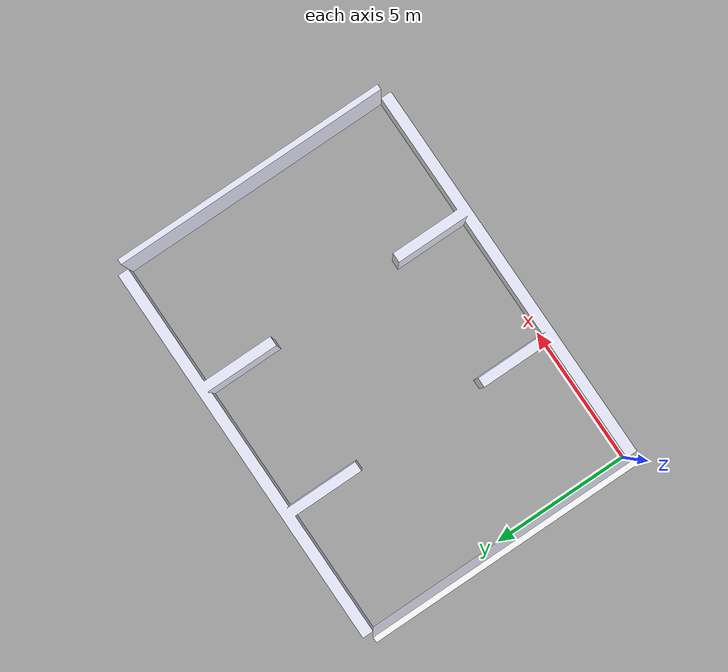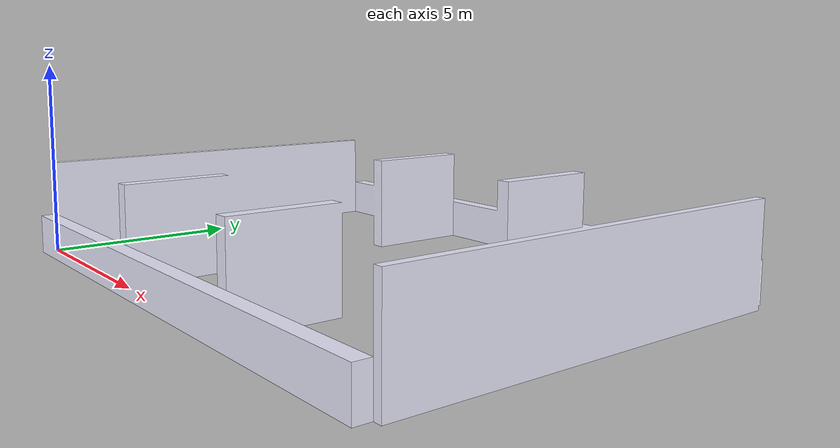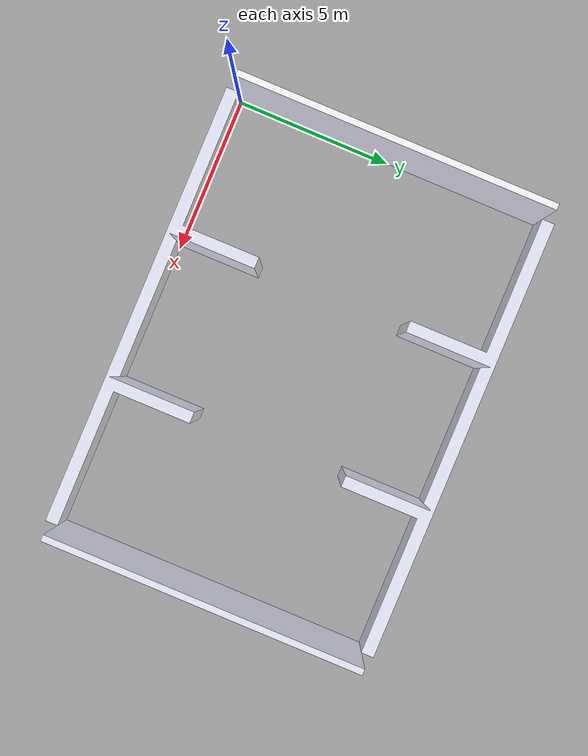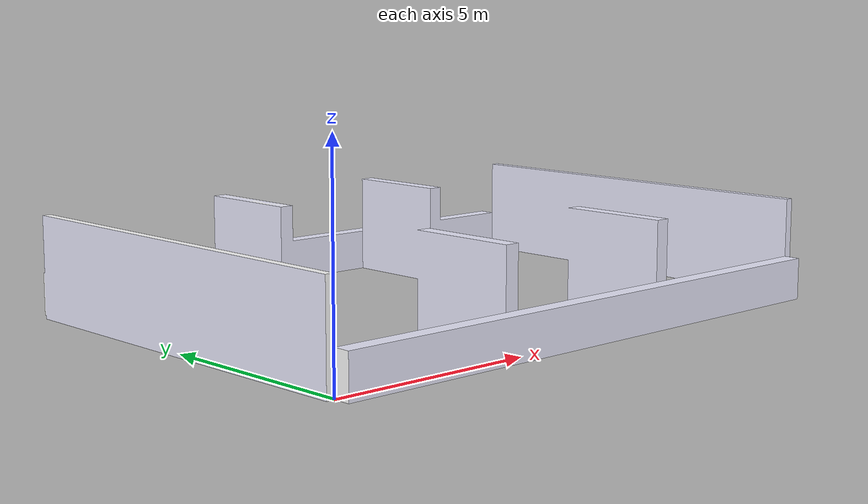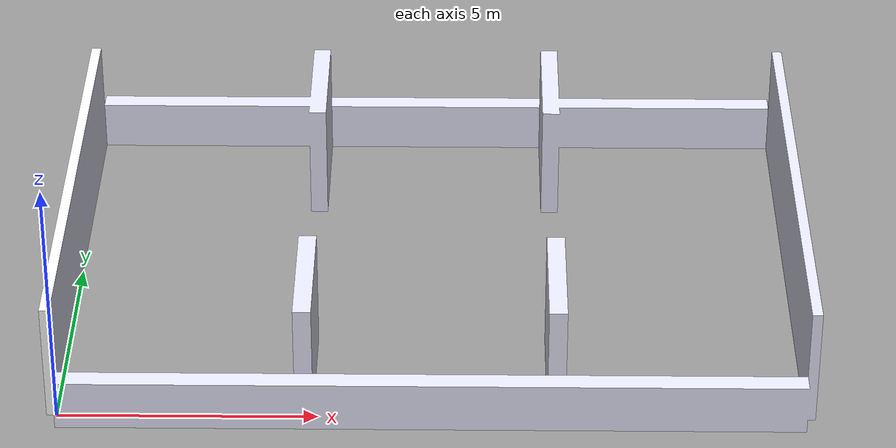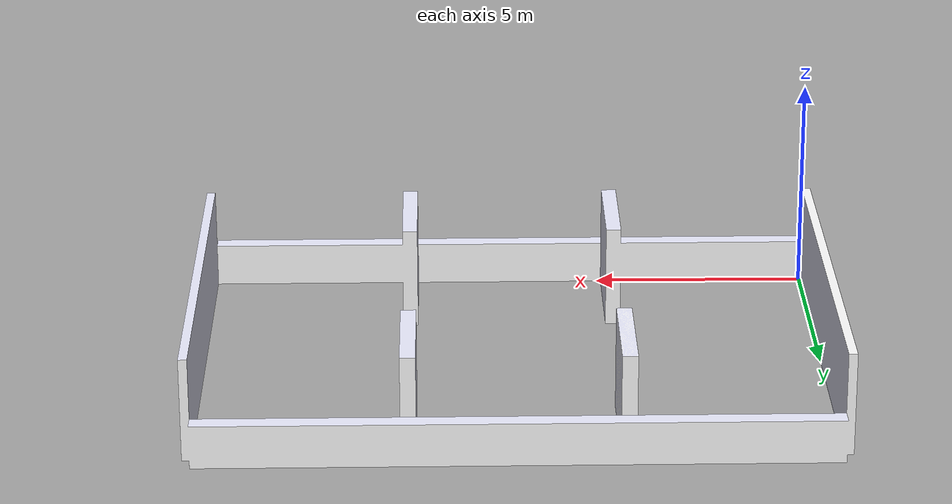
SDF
<?xml version="1.0" ?>
<sdf version="1.4">
  <model name="aass_lab">
    <static>true</static>
    <pose>0 0 0 0 0 0</pose>
    <link name="aass_lab_structure">
      <collision name="aass_lab_collision">
        <geometry>
          <mesh>
            <uri>model://aass_lab/meshes/lab.dae</uri>
          </mesh>
        </geometry>
      </collision>
      <visual name="visual">
        <geometry>
          <mesh>
            <uri>model://aass_lab/meshes/lab.dae</uri>
          </mesh>
        </geometry>
        <cast_shadows>false</cast_shadows>
      </visual>
    </link>
  </model>
</sdf>
